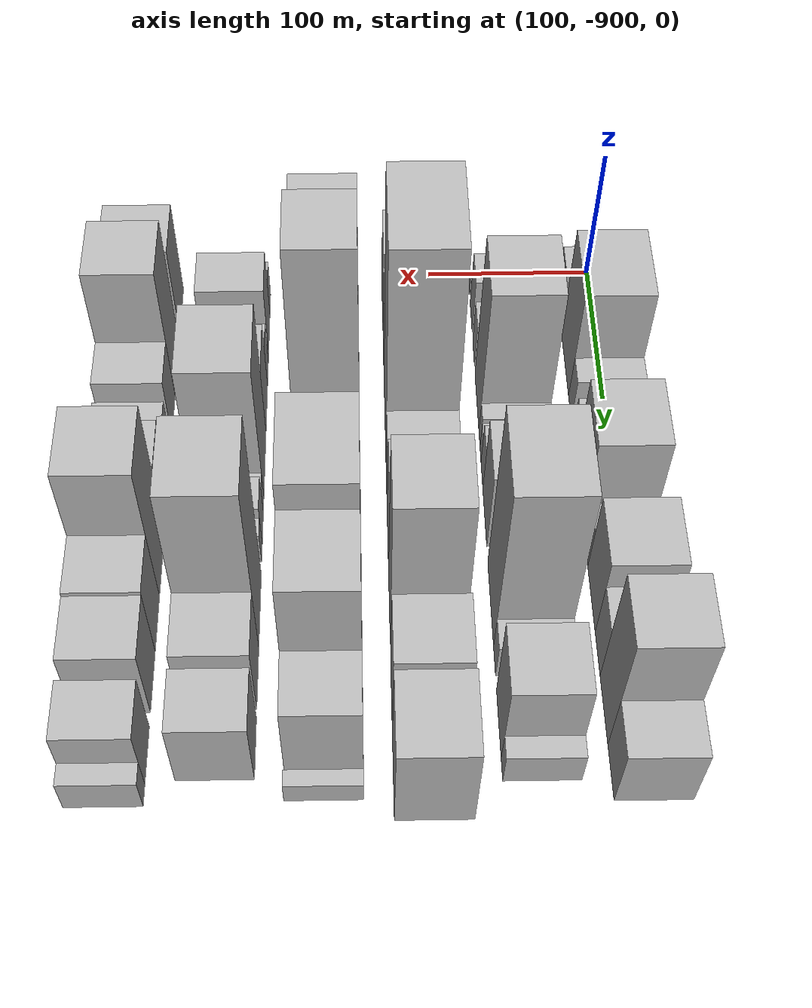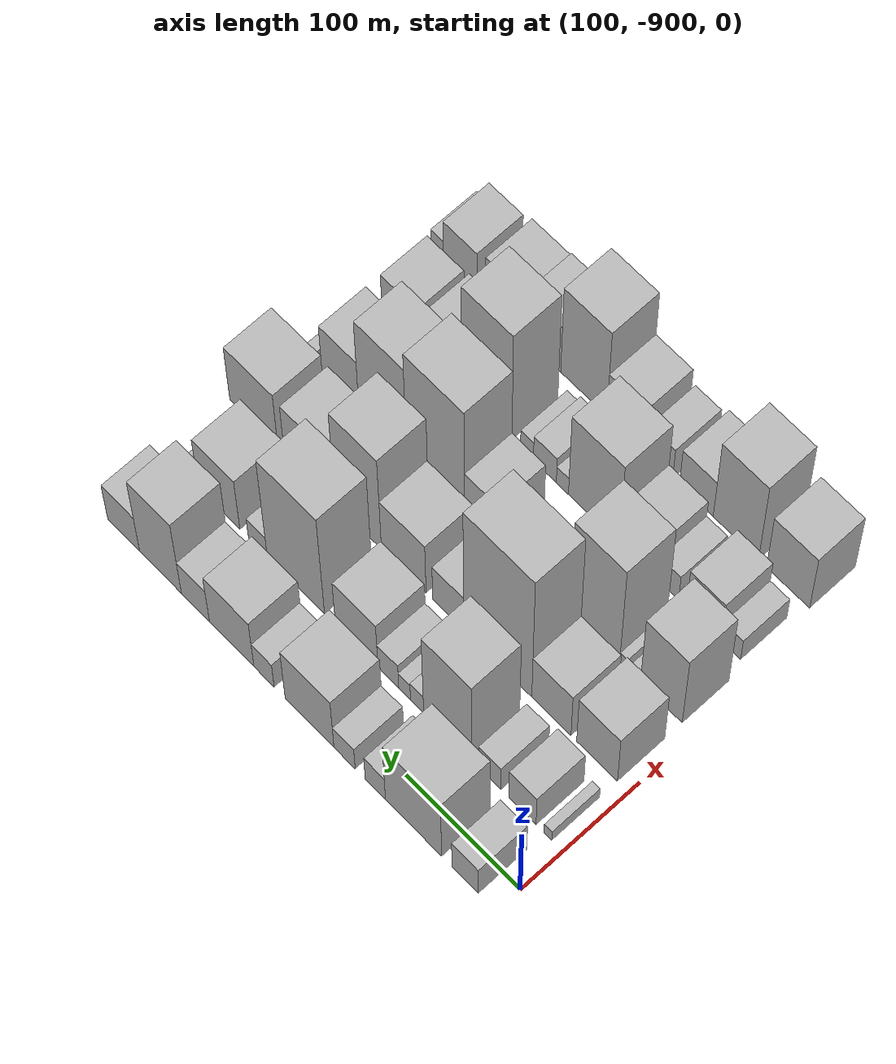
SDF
<sdf version="1.6">
 <world name="default">
  <model name="building_1">
   <static>1</static>
   <pose>100.0000 -872.4348 0 0.000000 0.000000 0.000000</pose>
   <link name="link">
    <pose>0 0 21.00 0 0 0</pose>
    <collision name="collision"><geometry><box><size>40.0000 23.1304 42.0000</size></box></geometry></collision>
    <visual name="visual">
     <cast_shadows>0</cast_shadows>
     <geometry><box><size>40.0000 23.1304 42.0000</size></box></geometry>
     <material>
      <script>
       <uri>model://HANNAS_wall/materials/scripts</uri>
       <uri>model://HANNAS_wall/materials/textures</uri>
       <name>vrc/HANNAS_wall</name>
      </script>
     </material>
    </visual>
   </link>
  </model>
  <model name="building_2">
   <static>1</static>
   <pose>100.0000 -827.0367 0 0.000000 0.000000 0.000000</pose>
   <link name="link">
    <pose>0 0 45.00 0 0 0</pose>
    <collision name="collision"><geometry><box><size>40.0000 49.6659 90.0000</size></box></geometry></collision>
    <visual name="visual">
     <cast_shadows>0</cast_shadows>
     <geometry><box><size>40.0000 49.6659 90.0000</size></box></geometry>
     <material>
      <script>
       <uri>model://HANNAS_wall/materials/scripts</uri>
       <uri>model://HANNAS_wall/materials/textures</uri>
       <name>vrc/HANNAS_wall</name>
      </script>
     </material>
    </visual>
   </link>
  </model>
  <model name="building_3">
   <static>1</static>
   <pose>100.0000 -793.1880 0 0.000000 0.000000 0.000000</pose>
   <link name="link">
    <pose>0 0 18.00 0 0 0</pose>
    <collision name="collision"><geometry><box><size>40.0000 18.0314 36.0000</size></box></geometry></collision>
    <visual name="visual">
     <cast_shadows>0</cast_shadows>
     <geometry><box><size>40.0000 18.0314 36.0000</size></box></geometry>
     <material>
      <script>
       <uri>model://HANNAS_wall/materials/scripts</uri>
       <uri>model://HANNAS_wall/materials/textures</uri>
       <name>vrc/HANNAS_wall</name>
      </script>
     </material>
    </visual>
   </link>
  </model>
  <model name="building_4">
   <static>1</static>
   <pose>100.0000 -765.6844 0 0.000000 0.000000 0.000000</pose>
   <link name="link">
    <pose>0 0 16.50 0 0 0</pose>
    <collision name="collision"><geometry><box><size>40.0000 18.9759 33.0000</size></box></geometry></collision>
    <visual name="visual">
     <cast_shadows>0</cast_shadows>
     <geometry><box><size>40.0000 18.9759 33.0000</size></box></geometry>
     <material>
      <script>
       <uri>model://HANNAS_wall/materials/scripts</uri>
       <uri>model://HANNAS_wall/materials/textures</uri>
       <name>vrc/HANNAS_wall</name>
      </script>
     </material>
    </visual>
   </link>
  </model>
  <model name="building_5">
   <static>1</static>
   <pose>100.0000 -734.1484 0 0.000000 0.000000 0.000000</pose>
   <link name="link">
    <pose>0 0 37.50 0 0 0</pose>
    <collision name="collision"><geometry><box><size>40.0000 44.0961 75.0000</size></box></geometry></collision>
    <visual name="visual">
     <cast_shadows>0</cast_shadows>
     <geometry><box><size>40.0000 44.0961 75.0000</size></box></geometry>
     <material>
      <script>
       <uri>model://HANNAS_wall/materials/scripts</uri>
       <uri>model://HANNAS_wall/materials/textures</uri>
       <name>vrc/HANNAS_wall</name>
      </script>
     </material>
    </visual>
   </link>
  </model>
  <model name="building_6">
   <static>1</static>
   <pose>100.0000 -692.8843 0 0.000000 0.000000 0.000000</pose>
   <link name="link">
    <pose>0 0 18.00 0 0 0</pose>
    <collision name="collision"><geometry><box><size>40.0000 18.4320 36.0000</size></box></geometry></collision>
    <visual name="visual">
     <cast_shadows>0</cast_shadows>
     <geometry><box><size>40.0000 18.4320 36.0000</size></box></geometry>
     <material>
      <script>
       <uri>model://HANNAS_wall/materials/scripts</uri>
       <uri>model://HANNAS_wall/materials/textures</uri>
       <name>vrc/HANNAS_wall</name>
      </script>
     </material>
    </visual>
   </link>
  </model>
  <model name="building_7">
   <static>1</static>
   <pose>100.0000 -663.2856 0 0.000000 0.000000 0.000000</pose>
   <link name="link">
    <pose>0 0 34.50 0 0 0</pose>
    <collision name="collision"><geometry><box><size>40.0000 40.7653 69.0000</size></box></geometry></collision>
    <visual name="visual">
     <cast_shadows>0</cast_shadows>
     <geometry><box><size>40.0000 40.7653 69.0000</size></box></geometry>
     <material>
      <script>
       <uri>model://HANNAS_wall/materials/scripts</uri>
       <uri>model://HANNAS_wall/materials/textures</uri>
       <name>vrc/HANNAS_wall</name>
      </script>
     </material>
    </visual>
   </link>
  </model>
  <model name="building_8">
   <static>1</static>
   <pose>100.0000 -629.9261 0 0.000000 0.000000 0.000000</pose>
   <link name="link">
    <pose>0 0 24.00 0 0 0</pose>
    <collision name="collision"><geometry><box><size>40.0000 25.9536 48.0000</size></box></geometry></collision>
    <visual name="visual">
     <cast_shadows>0</cast_shadows>
     <geometry><box><size>40.0000 25.9536 48.0000</size></box></geometry>
     <material>
      <script>
       <uri>model://HANNAS_wall/materials/scripts</uri>
       <uri>model://HANNAS_wall/materials/textures</uri>
       <name>vrc/HANNAS_wall</name>
      </script>
     </material>
    </visual>
   </link>
  </model>
  <model name="building_9">
   <static>1</static>
   <pose>100.0000 -597.4305 0 0.000000 0.000000 0.000000</pose>
   <link name="link">
    <pose>0 0 52.50 0 0 0</pose>
    <collision name="collision"><geometry><box><size>40.0000 39.0376 105.0000</size></box></geometry></collision>
    <visual name="visual">
     <cast_shadows>0</cast_shadows>
     <geometry><box><size>40.0000 39.0376 105.0000</size></box></geometry>
     <material>
      <script>
       <uri>model://HANNAS_wall/materials/scripts</uri>
       <uri>model://HANNAS_wall/materials/textures</uri>
       <name>vrc/HANNAS_wall</name>
      </script>
     </material>
    </visual>
   </link>
  </model>
  <model name="building_10">
   <static>1</static>
   <pose>100.0000 -562.9785 0 0.000000 0.000000 0.000000</pose>
   <link name="link">
    <pose>0 0 25.50 0 0 0</pose>
    <collision name="collision"><geometry><box><size>40.0000 29.8665 51.0000</size></box></geometry></collision>
    <visual name="visual">
     <cast_shadows>0</cast_shadows>
     <geometry><box><size>40.0000 29.8665 51.0000</size></box></geometry>
     <material>
      <script>
       <uri>model://HANNAS_wall/materials/scripts</uri>
       <uri>model://HANNAS_wall/materials/textures</uri>
       <name>vrc/HANNAS_wall</name>
      </script>
     </material>
    </visual>
   </link>
  </model>
  <model name="building_52">
   <static>1</static>
   <pose>155.0000 -886.6439 0 0.000000 0.000000 0.000000</pose>
   <link name="link">
    <pose>0 0 7.50 0 0 0</pose>
    <collision name="collision"><geometry><box><size>40.0000 6.7123 15.0000</size></box></geometry></collision>
    <visual name="visual">
     <cast_shadows>0</cast_shadows>
     <geometry><box><size>40.0000 6.7123 15.0000</size></box></geometry>
     <material>
      <script>
       <uri>model://HANNAS_wall/materials/scripts</uri>
       <uri>model://HANNAS_wall/materials/textures</uri>
       <name>vrc/HANNAS_wall</name>
      </script>
     </material>
    </visual>
   </link>
  </model>
  <model name="building_53">
   <static>1</static>
   <pose>155.0000 -864.4158 0 0.000000 0.000000 0.000000</pose>
   <link name="link">
    <pose>0 0 22.50 0 0 0</pose>
    <collision name="collision"><geometry><box><size>40.0000 23.7439 45.0000</size></box></geometry></collision>
    <visual name="visual">
     <cast_shadows>0</cast_shadows>
     <geometry><box><size>40.0000 23.7439 45.0000</size></box></geometry>
     <material>
      <script>
       <uri>model://HANNAS_wall/materials/scripts</uri>
       <uri>model://HANNAS_wall/materials/textures</uri>
       <name>vrc/HANNAS_wall</name>
      </script>
     </material>
    </visual>
   </link>
  </model>
  <model name="building_54">
   <static>1</static>
   <pose>155.0000 -835.6951 0 0.000000 0.000000 0.000000</pose>
   <link name="link">
    <pose>0 0 18.00 0 0 0</pose>
    <collision name="collision"><geometry><box><size>40.0000 19.6974 36.0000</size></box></geometry></collision>
    <visual name="visual">
     <cast_shadows>0</cast_shadows>
     <geometry><box><size>40.0000 19.6974 36.0000</size></box></geometry>
     <material>
      <script>
       <uri>model://HANNAS_wall/materials/scripts</uri>
       <uri>model://HANNAS_wall/materials/textures</uri>
       <name>vrc/HANNAS_wall</name>
      </script>
     </material>
    </visual>
   </link>
  </model>
  <model name="building_55">
   <static>1</static>
   <pose>155.0000 -798.4498 0 0.000000 0.000000 0.000000</pose>
   <link name="link">
    <pose>0 0 60.00 0 0 0</pose>
    <collision name="collision"><geometry><box><size>40.0000 42.7933 120.0000</size></box></geometry></collision>
    <visual name="visual">
     <cast_shadows>0</cast_shadows>
     <geometry><box><size>40.0000 42.7933 120.0000</size></box></geometry>
     <material>
      <script>
       <uri>model://HANNAS_wall/materials/scripts</uri>
       <uri>model://HANNAS_wall/materials/textures</uri>
       <name>vrc/HANNAS_wall</name>
      </script>
     </material>
    </visual>
   </link>
  </model>
  <model name="building_56">
   <static>1</static>
   <pose>155.0000 -771.1854 0 0.000000 0.000000 0.000000</pose>
   <link name="link">
    <pose>0 0 13.50 0 0 0</pose>
    <collision name="collision"><geometry><box><size>40.0000 11.7354 27.0000</size></box></geometry></collision>
    <visual name="visual">
     <cast_shadows>0</cast_shadows>
     <geometry><box><size>40.0000 11.7354 27.0000</size></box></geometry>
     <material>
      <script>
       <uri>model://HANNAS_wall/materials/scripts</uri>
       <uri>model://HANNAS_wall/materials/textures</uri>
       <name>vrc/HANNAS_wall</name>
      </script>
     </material>
    </visual>
   </link>
  </model>
  <model name="building_57">
   <static>1</static>
   <pose>155.0000 -760.0500 0 0.000000 0.000000 0.000000</pose>
   <link name="link">
    <pose>0 0 12.00 0 0 0</pose>
    <collision name="collision"><geometry><box><size>40.0000 10.5354 24.0000</size></box></geometry></collision>
    <visual name="visual">
     <cast_shadows>0</cast_shadows>
     <geometry><box><size>40.0000 10.5354 24.0000</size></box></geometry>
     <material>
      <script>
       <uri>model://HANNAS_wall/materials/scripts</uri>
       <uri>model://HANNAS_wall/materials/textures</uri>
       <name>vrc/HANNAS_wall</name>
      </script>
     </material>
    </visual>
   </link>
  </model>
  <model name="building_58">
   <static>1</static>
   <pose>155.0000 -745.4426 0 0.000000 0.000000 0.000000</pose>
   <link name="link">
    <pose>0 0 18.00 0 0 0</pose>
    <collision name="collision"><geometry><box><size>40.0000 18.6794 36.0000</size></box></geometry></collision>
    <visual name="visual">
     <cast_shadows>0</cast_shadows>
     <geometry><box><size>40.0000 18.6794 36.0000</size></box></geometry>
     <material>
      <script>
       <uri>model://HANNAS_wall/materials/scripts</uri>
       <uri>model://HANNAS_wall/materials/textures</uri>
       <name>vrc/HANNAS_wall</name>
      </script>
     </material>
    </visual>
   </link>
  </model>
  <model name="building_59">
   <static>1</static>
   <pose>155.0000 -716.8376 0 0.000000 0.000000 0.000000</pose>
   <link name="link">
    <pose>0 0 33.00 0 0 0</pose>
    <collision name="collision"><geometry><box><size>40.0000 38.5307 66.0000</size></box></geometry></collision>
    <visual name="visual">
     <cast_shadows>0</cast_shadows>
     <geometry><box><size>40.0000 38.5307 66.0000</size></box></geometry>
     <material>
      <script>
       <uri>model://HANNAS_wall/materials/scripts</uri>
       <uri>model://HANNAS_wall/materials/textures</uri>
       <name>vrc/HANNAS_wall</name>
      </script>
     </material>
    </visual>
   </link>
  </model>
  <model name="building_60">
   <static>1</static>
   <pose>155.0000 -661.3154 0 0.000000 0.000000 0.000000</pose>
   <link name="link">
    <pose>0 0 72.00 0 0 0</pose>
    <collision name="collision"><geometry><box><size>40.0000 52.5136 144.0000</size></box></geometry></collision>
    <visual name="visual">
     <cast_shadows>0</cast_shadows>
     <geometry><box><size>40.0000 52.5136 144.0000</size></box></geometry>
     <material>
      <script>
       <uri>model://HANNAS_wall/materials/scripts</uri>
       <uri>model://HANNAS_wall/materials/textures</uri>
       <name>vrc/HANNAS_wall</name>
      </script>
     </material>
    </visual>
   </link>
  </model>
  <model name="building_61">
   <static>1</static>
   <pose>155.0000 -626.3956 0 0.000000 0.000000 0.000000</pose>
   <link name="link">
    <pose>0 0 15.00 0 0 0</pose>
    <collision name="collision"><geometry><box><size>40.0000 17.3260 30.0000</size></box></geometry></collision>
    <visual name="visual">
     <cast_shadows>0</cast_shadows>
     <geometry><box><size>40.0000 17.3260 30.0000</size></box></geometry>
     <material>
      <script>
       <uri>model://HANNAS_wall/materials/scripts</uri>
       <uri>model://HANNAS_wall/materials/textures</uri>
       <name>vrc/HANNAS_wall</name>
      </script>
     </material>
    </visual>
   </link>
  </model>
  <model name="building_62">
   <static>1</static>
   <pose>155.0000 -590.5070 0 0.000000 0.000000 0.000000</pose>
   <link name="link">
    <pose>0 0 36.00 0 0 0</pose>
    <collision name="collision"><geometry><box><size>40.0000 38.4511 72.0000</size></box></geometry></collision>
    <visual name="visual">
     <cast_shadows>0</cast_shadows>
     <geometry><box><size>40.0000 38.4511 72.0000</size></box></geometry>
     <material>
      <script>
       <uri>model://HANNAS_wall/materials/scripts</uri>
       <uri>model://HANNAS_wall/materials/textures</uri>
       <name>vrc/HANNAS_wall</name>
      </script>
     </material>
    </visual>
   </link>
  </model>
  <model name="building_63">
   <static>1</static>
   <pose>155.0000 -565.2389 0 0.000000 0.000000 0.000000</pose>
   <link name="link">
    <pose>0 0 13.50 0 0 0</pose>
    <collision name="collision"><geometry><box><size>40.0000 12.0852 27.0000</size></box></geometry></collision>
    <visual name="visual">
     <cast_shadows>0</cast_shadows>
     <geometry><box><size>40.0000 12.0852 27.0000</size></box></geometry>
     <material>
      <script>
       <uri>model://HANNAS_wall/materials/scripts</uri>
       <uri>model://HANNAS_wall/materials/textures</uri>
       <name>vrc/HANNAS_wall</name>
      </script>
     </material>
    </visual>
   </link>
  </model>
  <model name="building_108">
   <static>1</static>
   <pose>210.0000 -872.2195 0 0.000000 0.000000 0.000000</pose>
   <link name="link">
    <pose>0 0 34.50 0 0 0</pose>
    <collision name="collision"><geometry><box><size>40.0000 35.5610 69.0000</size></box></geometry></collision>
    <visual name="visual">
     <cast_shadows>0</cast_shadows>
     <geometry><box><size>40.0000 35.5610 69.0000</size></box></geometry>
     <material>
      <script>
       <uri>model://HANNAS_wall/materials/scripts</uri>
       <uri>model://HANNAS_wall/materials/textures</uri>
       <name>vrc/HANNAS_wall</name>
      </script>
     </material>
    </visual>
   </link>
  </model>
  <model name="building_109">
   <static>1</static>
   <pose>210.0000 -832.1753 0 0.000000 0.000000 0.000000</pose>
   <link name="link">
    <pose>0 0 31.50 0 0 0</pose>
    <collision name="collision"><geometry><box><size>40.0000 34.5273 63.0000</size></box></geometry></collision>
    <visual name="visual">
     <cast_shadows>0</cast_shadows>
     <geometry><box><size>40.0000 34.5273 63.0000</size></box></geometry>
     <material>
      <script>
       <uri>model://HANNAS_wall/materials/scripts</uri>
       <uri>model://HANNAS_wall/materials/textures</uri>
       <name>vrc/HANNAS_wall</name>
      </script>
     </material>
    </visual>
   </link>
  </model>
  <model name="building_110">
   <static>1</static>
   <pose>210.0000 -784.7230 0 0.000000 0.000000 0.000000</pose>
   <link name="link">
    <pose>0 0 90.00 0 0 0</pose>
    <collision name="collision"><geometry><box><size>40.0000 60.3774 180.0000</size></box></geometry></collision>
    <visual name="visual">
     <cast_shadows>0</cast_shadows>
     <geometry><box><size>40.0000 60.3774 180.0000</size></box></geometry>
     <material>
      <script>
       <uri>model://HANNAS_wall/materials/scripts</uri>
       <uri>model://HANNAS_wall/materials/textures</uri>
       <name>vrc/HANNAS_wall</name>
      </script>
     </material>
    </visual>
   </link>
  </model>
  <model name="building_111">
   <static>1</static>
   <pose>210.0000 -740.4530 0 0.000000 0.000000 0.000000</pose>
   <link name="link">
    <pose>0 0 25.50 0 0 0</pose>
    <collision name="collision"><geometry><box><size>40.0000 28.1626 51.0000</size></box></geometry></collision>
    <visual name="visual">
     <cast_shadows>0</cast_shadows>
     <geometry><box><size>40.0000 28.1626 51.0000</size></box></geometry>
     <material>
      <script>
       <uri>model://HANNAS_wall/materials/scripts</uri>
       <uri>model://HANNAS_wall/materials/textures</uri>
       <name>vrc/HANNAS_wall</name>
      </script>
     </material>
    </visual>
   </link>
  </model>
  <model name="building_112">
   <static>1</static>
   <pose>210.0000 -700.1022 0 0.000000 0.000000 0.000000</pose>
   <link name="link">
    <pose>0 0 36.00 0 0 0</pose>
    <collision name="collision"><geometry><box><size>40.0000 40.5390 72.0000</size></box></geometry></collision>
    <visual name="visual">
     <cast_shadows>0</cast_shadows>
     <geometry><box><size>40.0000 40.5390 72.0000</size></box></geometry>
     <material>
      <script>
       <uri>model://HANNAS_wall/materials/scripts</uri>
       <uri>model://HANNAS_wall/materials/textures</uri>
       <name>vrc/HANNAS_wall</name>
      </script>
     </material>
    </visual>
   </link>
  </model>
  <model name="building_113">
   <static>1</static>
   <pose>210.0000 -658.6355 0 0.000000 0.000000 0.000000</pose>
   <link name="link">
    <pose>0 0 66.00 0 0 0</pose>
    <collision name="collision"><geometry><box><size>40.0000 42.3944 132.0000</size></box></geometry></collision>
    <visual name="visual">
     <cast_shadows>0</cast_shadows>
     <geometry><box><size>40.0000 42.3944 132.0000</size></box></geometry>
     <material>
      <script>
       <uri>model://HANNAS_wall/materials/scripts</uri>
       <uri>model://HANNAS_wall/materials/textures</uri>
       <name>vrc/HANNAS_wall</name>
      </script>
     </material>
    </visual>
   </link>
  </model>
  <model name="building_114">
   <static>1</static>
   <pose>210.0000 -609.3199 0 0.000000 0.000000 0.000000</pose>
   <link name="link">
    <pose>0 0 34.50 0 0 0</pose>
    <collision name="collision"><geometry><box><size>40.0000 38.2367 69.0000</size></box></geometry></collision>
    <visual name="visual">
     <cast_shadows>0</cast_shadows>
     <geometry><box><size>40.0000 38.2367 69.0000</size></box></geometry>
     <material>
      <script>
       <uri>model://HANNAS_wall/materials/scripts</uri>
       <uri>model://HANNAS_wall/materials/textures</uri>
       <name>vrc/HANNAS_wall</name>
      </script>
     </material>
    </visual>
   </link>
  </model>
  <model name="building_115">
   <static>1</static>
   <pose>210.0000 -561.7399 0 0.000000 0.000000 0.000000</pose>
   <link name="link">
    <pose>0 0 37.50 0 0 0</pose>
    <collision name="collision"><geometry><box><size>40.0000 44.9233 75.0000</size></box></geometry></collision>
    <visual name="visual">
     <cast_shadows>0</cast_shadows>
     <geometry><box><size>40.0000 44.9233 75.0000</size></box></geometry>
     <material>
      <script>
       <uri>model://HANNAS_wall/materials/scripts</uri>
       <uri>model://HANNAS_wall/materials/textures</uri>
       <name>vrc/HANNAS_wall</name>
      </script>
     </material>
    </visual>
   </link>
  </model>
  <model name="building_155">
   <static>1</static>
   <pose>265.0000 -871.7541 0 0.000000 0.000000 0.000000</pose>
   <link name="link">
    <pose>0 0 49.50 0 0 0</pose>
    <collision name="collision"><geometry><box><size>40.0000 36.4919 99.0000</size></box></geometry></collision>
    <visual name="visual">
     <cast_shadows>0</cast_shadows>
     <geometry><box><size>40.0000 36.4919 99.0000</size></box></geometry>
     <material>
      <script>
       <uri>model://HANNAS_wall/materials/scripts</uri>
       <uri>model://HANNAS_wall/materials/textures</uri>
       <name>vrc/HANNAS_wall</name>
      </script>
     </material>
    </visual>
   </link>
  </model>
  <model name="building_156">
   <static>1</static>
   <pose>265.0000 -849.6989 0 0.000000 0.000000 0.000000</pose>
   <link name="link">
    <pose>0 0 9.00 0 0 0</pose>
    <collision name="collision"><geometry><box><size>40.0000 7.6184 18.0000</size></box></geometry></collision>
    <visual name="visual">
     <cast_shadows>0</cast_shadows>
     <geometry><box><size>40.0000 7.6184 18.0000</size></box></geometry>
     <material>
      <script>
       <uri>model://HANNAS_wall/materials/scripts</uri>
       <uri>model://HANNAS_wall/materials/textures</uri>
       <name>vrc/HANNAS_wall</name>
      </script>
     </material>
    </visual>
   </link>
  </model>
  <model name="building_157">
   <static>1</static>
   <pose>265.0000 -838.5946 0 0.000000 0.000000 0.000000</pose>
   <link name="link">
    <pose>0 0 7.50 0 0 0</pose>
    <collision name="collision"><geometry><box><size>40.0000 6.5903 15.0000</size></box></geometry></collision>
    <visual name="visual">
     <cast_shadows>0</cast_shadows>
     <geometry><box><size>40.0000 6.5903 15.0000</size></box></geometry>
     <material>
      <script>
       <uri>model://HANNAS_wall/materials/scripts</uri>
       <uri>model://HANNAS_wall/materials/textures</uri>
       <name>vrc/HANNAS_wall</name>
      </script>
     </material>
    </visual>
   </link>
  </model>
  <model name="building_158">
   <static>1</static>
   <pose>265.0000 -813.4398 0 0.000000 0.000000 0.000000</pose>
   <link name="link">
    <pose>0 0 70.50 0 0 0</pose>
    <collision name="collision"><geometry><box><size>40.0000 43.7192 141.0000</size></box></geometry></collision>
    <visual name="visual">
     <cast_shadows>0</cast_shadows>
     <geometry><box><size>40.0000 43.7192 141.0000</size></box></geometry>
     <material>
      <script>
       <uri>model://HANNAS_wall/materials/scripts</uri>
       <uri>model://HANNAS_wall/materials/textures</uri>
       <name>vrc/HANNAS_wall</name>
      </script>
     </material>
    </visual>
   </link>
  </model>
  <model name="building_159">
   <static>1</static>
   <pose>265.0000 -711.7170 0 0.000000 0.000000 0.000000</pose>
   <link name="link">
    <pose>0 0 28.50 0 0 0</pose>
    <collision name="collision"><geometry><box><size>40.0000 29.9088 57.0000</size></box></geometry></collision>
    <visual name="visual">
     <cast_shadows>0</cast_shadows>
     <geometry><box><size>40.0000 29.9088 57.0000</size></box></geometry>
     <material>
      <script>
       <uri>model://HANNAS_wall/materials/scripts</uri>
       <uri>model://HANNAS_wall/materials/textures</uri>
       <name>vrc/HANNAS_wall</name>
      </script>
     </material>
    </visual>
   </link>
  </model>
  <model name="building_160">
   <static>1</static>
   <pose>265.0000 -670.2023 0 0.000000 0.000000 0.000000</pose>
   <link name="link">
    <pose>0 0 72.00 0 0 0</pose>
    <collision name="collision"><geometry><box><size>40.0000 53.1206 144.0000</size></box></geometry></collision>
    <visual name="visual">
     <cast_shadows>0</cast_shadows>
     <geometry><box><size>40.0000 53.1206 144.0000</size></box></geometry>
     <material>
      <script>
       <uri>model://HANNAS_wall/materials/scripts</uri>
       <uri>model://HANNAS_wall/materials/textures</uri>
       <name>vrc/HANNAS_wall</name>
      </script>
     </material>
    </visual>
   </link>
  </model>
  <model name="building_161">
   <static>1</static>
   <pose>265.0000 -621.5360 0 0.000000 0.000000 0.000000</pose>
   <link name="link">
    <pose>0 0 61.50 0 0 0</pose>
    <collision name="collision"><geometry><box><size>40.0000 44.2121 123.0000</size></box></geometry></collision>
    <visual name="visual">
     <cast_shadows>0</cast_shadows>
     <geometry><box><size>40.0000 44.2121 123.0000</size></box></geometry>
     <material>
      <script>
       <uri>model://HANNAS_wall/materials/scripts</uri>
       <uri>model://HANNAS_wall/materials/textures</uri>
       <name>vrc/HANNAS_wall</name>
      </script>
     </material>
    </visual>
   </link>
  </model>
  <model name="building_162">
   <static>1</static>
   <pose>265.0000 -582.2779 0 0.000000 0.000000 0.000000</pose>
   <link name="link">
    <pose>0 0 33.00 0 0 0</pose>
    <collision name="collision"><geometry><box><size>40.0000 34.3040 66.0000</size></box></geometry></collision>
    <visual name="visual">
     <cast_shadows>0</cast_shadows>
     <geometry><box><size>40.0000 34.3040 66.0000</size></box></geometry>
     <material>
      <script>
       <uri>model://HANNAS_wall/materials/scripts</uri>
       <uri>model://HANNAS_wall/materials/textures</uri>
       <name>vrc/HANNAS_wall</name>
      </script>
     </material>
    </visual>
   </link>
  </model>
  <model name="building_163">
   <static>1</static>
   <pose>265.0000 -554.7098 0 0.000000 0.000000 0.000000</pose>
   <link name="link">
    <pose>0 0 9.00 0 0 0</pose>
    <collision name="collision"><geometry><box><size>40.0000 8.8322 18.0000</size></box></geometry></collision>
    <visual name="visual">
     <cast_shadows>0</cast_shadows>
     <geometry><box><size>40.0000 8.8322 18.0000</size></box></geometry>
     <material>
      <script>
       <uri>model://HANNAS_wall/materials/scripts</uri>
       <uri>model://HANNAS_wall/materials/textures</uri>
       <name>vrc/HANNAS_wall</name>
      </script>
     </material>
    </visual>
   </link>
  </model>
  <model name="building_205">
   <static>1</static>
   <pose>320.0000 -876.5342 0 0.000000 0.000000 0.000000</pose>
   <link name="link">
    <pose>0 0 15.00 0 0 0</pose>
    <collision name="collision"><geometry><box><size>40.0000 16.9317 30.0000</size></box></geometry></collision>
    <visual name="visual">
     <cast_shadows>0</cast_shadows>
     <geometry><box><size>40.0000 16.9317 30.0000</size></box></geometry>
     <material>
      <script>
       <uri>model://HANNAS_wall/materials/scripts</uri>
       <uri>model://HANNAS_wall/materials/textures</uri>
       <name>vrc/HANNAS_wall</name>
      </script>
     </material>
    </visual>
   </link>
  </model>
  <model name="building_206">
   <static>1</static>
   <pose>320.0000 -852.8253 0 0.000000 0.000000 0.000000</pose>
   <link name="link">
    <pose>0 0 28.50 0 0 0</pose>
    <collision name="collision"><geometry><box><size>40.0000 30.4861 57.0000</size></box></geometry></collision>
    <visual name="visual">
     <cast_shadows>0</cast_shadows>
     <geometry><box><size>40.0000 30.4861 57.0000</size></box></geometry>
     <material>
      <script>
       <uri>model://HANNAS_wall/materials/scripts</uri>
       <uri>model://HANNAS_wall/materials/textures</uri>
       <name>vrc/HANNAS_wall</name>
      </script>
     </material>
    </visual>
   </link>
  </model>
  <model name="building_207">
   <static>1</static>
   <pose>320.0000 -834.1470 0 0.000000 0.000000 0.000000</pose>
   <link name="link">
    <pose>0 0 7.50 0 0 0</pose>
    <collision name="collision"><geometry><box><size>40.0000 6.8703 15.0000</size></box></geometry></collision>
    <visual name="visual">
     <cast_shadows>0</cast_shadows>
     <geometry><box><size>40.0000 6.8703 15.0000</size></box></geometry>
     <material>
      <script>
       <uri>model://HANNAS_wall/materials/scripts</uri>
       <uri>model://HANNAS_wall/materials/textures</uri>
       <name>vrc/HANNAS_wall</name>
      </script>
     </material>
    </visual>
   </link>
  </model>
  <model name="building_208">
   <static>1</static>
   <pose>320.0000 -821.5449 0 0.000000 0.000000 0.000000</pose>
   <link name="link">
    <pose>0 0 18.00 0 0 0</pose>
    <collision name="collision"><geometry><box><size>40.0000 18.3340 36.0000</size></box></geometry></collision>
    <visual name="visual">
     <cast_shadows>0</cast_shadows>
     <geometry><box><size>40.0000 18.3340 36.0000</size></box></geometry>
     <material>
      <script>
       <uri>model://HANNAS_wall/materials/scripts</uri>
       <uri>model://HANNAS_wall/materials/textures</uri>
       <name>vrc/HANNAS_wall</name>
      </script>
     </material>
    </visual>
   </link>
  </model>
  <model name="building_209">
   <static>1</static>
   <pose>320.0000 -795.3199 0 0.000000 0.000000 0.000000</pose>
   <link name="link">
    <pose>0 0 28.50 0 0 0</pose>
    <collision name="collision"><geometry><box><size>40.0000 34.1161 57.0000</size></box></geometry></collision>
    <visual name="visual">
     <cast_shadows>0</cast_shadows>
     <geometry><box><size>40.0000 34.1161 57.0000</size></box></geometry>
     <material>
      <script>
       <uri>model://HANNAS_wall/materials/scripts</uri>
       <uri>model://HANNAS_wall/materials/textures</uri>
       <name>vrc/HANNAS_wall</name>
      </script>
     </material>
    </visual>
   </link>
  </model>
  <model name="building_210">
   <static>1</static>
   <pose>320.0000 -755.4643 0 0.000000 0.000000 0.000000</pose>
   <link name="link">
    <pose>0 0 57.00 0 0 0</pose>
    <collision name="collision"><geometry><box><size>40.0000 45.5950 114.0000</size></box></geometry></collision>
    <visual name="visual">
     <cast_shadows>0</cast_shadows>
     <geometry><box><size>40.0000 45.5950 114.0000</size></box></geometry>
     <material>
      <script>
       <uri>model://HANNAS_wall/materials/scripts</uri>
       <uri>model://HANNAS_wall/materials/textures</uri>
       <name>vrc/HANNAS_wall</name>
      </script>
     </material>
    </visual>
   </link>
  </model>
  <model name="building_211">
   <static>1</static>
   <pose>320.0000 -727.2061 0 0.000000 0.000000 0.000000</pose>
   <link name="link">
    <pose>0 0 12.00 0 0 0</pose>
    <collision name="collision"><geometry><box><size>40.0000 10.9215 24.0000</size></box></geometry></collision>
    <visual name="visual">
     <cast_shadows>0</cast_shadows>
     <geometry><box><size>40.0000 10.9215 24.0000</size></box></geometry>
     <material>
      <script>
       <uri>model://HANNAS_wall/materials/scripts</uri>
       <uri>model://HANNAS_wall/materials/textures</uri>
       <name>vrc/HANNAS_wall</name>
      </script>
     </material>
    </visual>
   </link>
  </model>
  <model name="building_212">
   <static>1</static>
   <pose>320.0000 -711.3767 0 0.000000 0.000000 0.000000</pose>
   <link name="link">
    <pose>0 0 18.00 0 0 0</pose>
    <collision name="collision"><geometry><box><size>40.0000 20.7373 36.0000</size></box></geometry></collision>
    <visual name="visual">
     <cast_shadows>0</cast_shadows>
     <geometry><box><size>40.0000 20.7373 36.0000</size></box></geometry>
     <material>
      <script>
       <uri>model://HANNAS_wall/materials/scripts</uri>
       <uri>model://HANNAS_wall/materials/textures</uri>
       <name>vrc/HANNAS_wall</name>
      </script>
     </material>
    </visual>
   </link>
  </model>
  <model name="building_213">
   <static>1</static>
   <pose>320.0000 -695.1607 0 0.000000 0.000000 0.000000</pose>
   <link name="link">
    <pose>0 0 13.50 0 0 0</pose>
    <collision name="collision"><geometry><box><size>40.0000 11.6946 27.0000</size></box></geometry></collision>
    <visual name="visual">
     <cast_shadows>0</cast_shadows>
     <geometry><box><size>40.0000 11.6946 27.0000</size></box></geometry>
     <material>
      <script>
       <uri>model://HANNAS_wall/materials/scripts</uri>
       <uri>model://HANNAS_wall/materials/textures</uri>
       <name>vrc/HANNAS_wall</name>
      </script>
     </material>
    </visual>
   </link>
  </model>
  <model name="building_214">
   <static>1</static>
   <pose>320.0000 -658.5609 0 0.000000 0.000000 0.000000</pose>
   <link name="link">
    <pose>0 0 73.50 0 0 0</pose>
    <collision name="collision"><geometry><box><size>40.0000 45.5051 147.0000</size></box></geometry></collision>
    <visual name="visual">
     <cast_shadows>0</cast_shadows>
     <geometry><box><size>40.0000 45.5051 147.0000</size></box></geometry>
     <material>
      <script>
       <uri>model://HANNAS_wall/materials/scripts</uri>
       <uri>model://HANNAS_wall/materials/textures</uri>
       <name>vrc/HANNAS_wall</name>
      </script>
     </material>
    </visual>
   </link>
  </model>
  <model name="building_215">
   <static>1</static>
   <pose>320.0000 -618.0637 0 0.000000 0.000000 0.000000</pose>
   <link name="link">
    <pose>0 0 30.00 0 0 0</pose>
    <collision name="collision"><geometry><box><size>40.0000 35.4893 60.0000</size></box></geometry></collision>
    <visual name="visual">
     <cast_shadows>0</cast_shadows>
     <geometry><box><size>40.0000 35.4893 60.0000</size></box></geometry>
     <material>
      <script>
       <uri>model://HANNAS_wall/materials/scripts</uri>
       <uri>model://HANNAS_wall/materials/textures</uri>
       <name>vrc/HANNAS_wall</name>
      </script>
     </material>
    </visual>
   </link>
  </model>
  <model name="building_216">
   <static>1</static>
   <pose>320.0000 -578.5402 0 0.000000 0.000000 0.000000</pose>
   <link name="link">
    <pose>0 0 28.50 0 0 0</pose>
    <collision name="collision"><geometry><box><size>40.0000 33.5576 57.0000</size></box></geometry></collision>
    <visual name="visual">
     <cast_shadows>0</cast_shadows>
     <geometry><box><size>40.0000 33.5576 57.0000</size></box></geometry>
     <material>
      <script>
       <uri>model://HANNAS_wall/materials/scripts</uri>
       <uri>model://HANNAS_wall/materials/textures</uri>
       <name>vrc/HANNAS_wall</name>
      </script>
     </material>
    </visual>
   </link>
  </model>
  <model name="building_257">
   <static>1</static>
   <pose>375.0000 -871.2127 0 0.000000 0.000000 0.000000</pose>
   <link name="link">
    <pose>0 0 37.50 0 0 0</pose>
    <collision name="collision"><geometry><box><size>40.0000 37.5747 75.0000</size></box></geometry></collision>
    <visual name="visual">
     <cast_shadows>0</cast_shadows>
     <geometry><box><size>40.0000 37.5747 75.0000</size></box></geometry>
     <material>
      <script>
       <uri>model://HANNAS_wall/materials/scripts</uri>
       <uri>model://HANNAS_wall/materials/textures</uri>
       <name>vrc/HANNAS_wall</name>
      </script>
     </material>
    </visual>
   </link>
  </model>
  <model name="building_258">
   <static>1</static>
   <pose>375.0000 -825.4145 0 0.000000 0.000000 0.000000</pose>
   <link name="link">
    <pose>0 0 54.00 0 0 0</pose>
    <collision name="collision"><geometry><box><size>40.0000 40.0216 108.0000</size></box></geometry></collision>
    <visual name="visual">
     <cast_shadows>0</cast_shadows>
     <geometry><box><size>40.0000 40.0216 108.0000</size></box></geometry>
     <material>
      <script>
       <uri>model://HANNAS_wall/materials/scripts</uri>
       <uri>model://HANNAS_wall/materials/textures</uri>
       <name>vrc/HANNAS_wall</name>
      </script>
     </material>
    </visual>
   </link>
  </model>
  <model name="building_259">
   <static>1</static>
   <pose>375.0000 -790.4441 0 0.000000 0.000000 0.000000</pose>
   <link name="link">
    <pose>0 0 25.50 0 0 0</pose>
    <collision name="collision"><geometry><box><size>40.0000 29.9193 51.0000</size></box></geometry></collision>
    <visual name="visual">
     <cast_shadows>0</cast_shadows>
     <geometry><box><size>40.0000 29.9193 51.0000</size></box></geometry>
     <material>
      <script>
       <uri>model://HANNAS_wall/materials/scripts</uri>
       <uri>model://HANNAS_wall/materials/textures</uri>
       <name>vrc/HANNAS_wall</name>
      </script>
     </material>
    </visual>
   </link>
  </model>
  <model name="building_260">
   <static>1</static>
   <pose>375.0000 -757.8932 0 0.000000 0.000000 0.000000</pose>
   <link name="link">
    <pose>0 0 21.00 0 0 0</pose>
    <collision name="collision"><geometry><box><size>40.0000 23.1823 42.0000</size></box></geometry></collision>
    <visual name="visual">
     <cast_shadows>0</cast_shadows>
     <geometry><box><size>40.0000 23.1823 42.0000</size></box></geometry>
     <material>
      <script>
       <uri>model://HANNAS_wall/materials/scripts</uri>
       <uri>model://HANNAS_wall/materials/textures</uri>
       <name>vrc/HANNAS_wall</name>
      </script>
     </material>
    </visual>
   </link>
  </model>
  <model name="building_261">
   <static>1</static>
   <pose>375.0000 -726.7930 0 0.000000 0.000000 0.000000</pose>
   <link name="link">
    <pose>0 0 30.00 0 0 0</pose>
    <collision name="collision"><geometry><box><size>40.0000 33.0181 60.0000</size></box></geometry></collision>
    <visual name="visual">
     <cast_shadows>0</cast_shadows>
     <geometry><box><size>40.0000 33.0181 60.0000</size></box></geometry>
     <material>
      <script>
       <uri>model://HANNAS_wall/materials/scripts</uri>
       <uri>model://HANNAS_wall/materials/textures</uri>
       <name>vrc/HANNAS_wall</name>
      </script>
     </material>
    </visual>
   </link>
  </model>
  <model name="building_262">
   <static>1</static>
   <pose>375.0000 -689.3210 0 0.000000 0.000000 0.000000</pose>
   <link name="link">
    <pose>0 0 58.50 0 0 0</pose>
    <collision name="collision"><geometry><box><size>40.0000 41.9259 117.0000</size></box></geometry></collision>
    <visual name="visual">
     <cast_shadows>0</cast_shadows>
     <geometry><box><size>40.0000 41.9259 117.0000</size></box></geometry>
     <material>
      <script>
       <uri>model://HANNAS_wall/materials/scripts</uri>
       <uri>model://HANNAS_wall/materials/textures</uri>
       <name>vrc/HANNAS_wall</name>
      </script>
     </material>
    </visual>
   </link>
  </model>
  <model name="building_263">
   <static>1</static>
   <pose>375.0000 -651.5542 0 0.000000 0.000000 0.000000</pose>
   <link name="link">
    <pose>0 0 31.50 0 0 0</pose>
    <collision name="collision"><geometry><box><size>40.0000 33.6077 63.0000</size></box></geometry></collision>
    <visual name="visual">
     <cast_shadows>0</cast_shadows>
     <geometry><box><size>40.0000 33.6077 63.0000</size></box></geometry>
     <material>
      <script>
       <uri>model://HANNAS_wall/materials/scripts</uri>
       <uri>model://HANNAS_wall/materials/textures</uri>
       <name>vrc/HANNAS_wall</name>
      </script>
     </material>
    </visual>
   </link>
  </model>
  <model name="building_264">
   <static>1</static>
   <pose>375.0000 -617.0390 0 0.000000 0.000000 0.000000</pose>
   <link name="link">
    <pose>0 0 30.00 0 0 0</pose>
    <collision name="collision"><geometry><box><size>40.0000 35.4226 60.0000</size></box></geometry></collision>
    <visual name="visual">
     <cast_shadows>0</cast_shadows>
     <geometry><box><size>40.0000 35.4226 60.0000</size></box></geometry>
     <material>
      <script>
       <uri>model://HANNAS_wall/materials/scripts</uri>
       <uri>model://HANNAS_wall/materials/textures</uri>
       <name>vrc/HANNAS_wall</name>
      </script>
     </material>
    </visual>
   </link>
  </model>
  <model name="building_265">
   <static>1</static>
   <pose>375.0000 -575.6911 0 0.000000 0.000000 0.000000</pose>
   <link name="link">
    <pose>0 0 27.00 0 0 0</pose>
    <collision name="collision"><geometry><box><size>40.0000 31.2733 54.0000</size></box></geometry></collision>
    <visual name="visual">
     <cast_shadows>0</cast_shadows>
     <geometry><box><size>40.0000 31.2733 54.0000</size></box></geometry>
     <material>
      <script>
       <uri>model://HANNAS_wall/materials/scripts</uri>
       <uri>model://HANNAS_wall/materials/textures</uri>
       <name>vrc/HANNAS_wall</name>
      </script>
     </material>
    </visual>
   </link>
  </model>
  <model name="building_266">
   <static>1</static>
   <pose>375.0000 -554.2004 0 0.000000 0.000000 0.000000</pose>
   <link name="link">
    <pose>0 0 13.50 0 0 0</pose>
    <collision name="collision"><geometry><box><size>40.0000 11.7081 27.0000</size></box></geometry></collision>
    <visual name="visual">
     <cast_shadows>0</cast_shadows>
     <geometry><box><size>40.0000 11.7081 27.0000</size></box></geometry>
     <material>
      <script>
       <uri>model://HANNAS_wall/materials/scripts</uri>
       <uri>model://HANNAS_wall/materials/textures</uri>
       <name>vrc/HANNAS_wall</name>
      </script>
     </material>
    </visual>
   </link>
  </model>
 </world>
</sdf>
